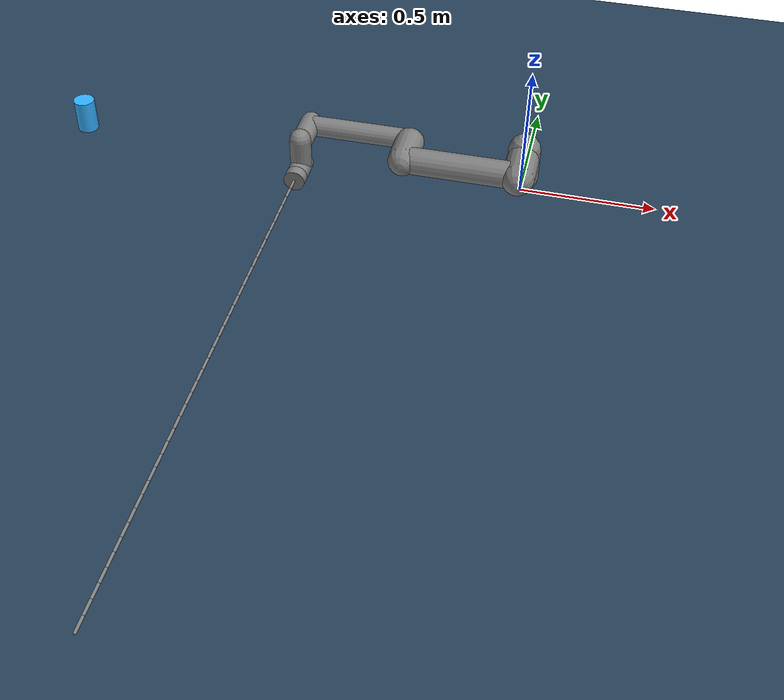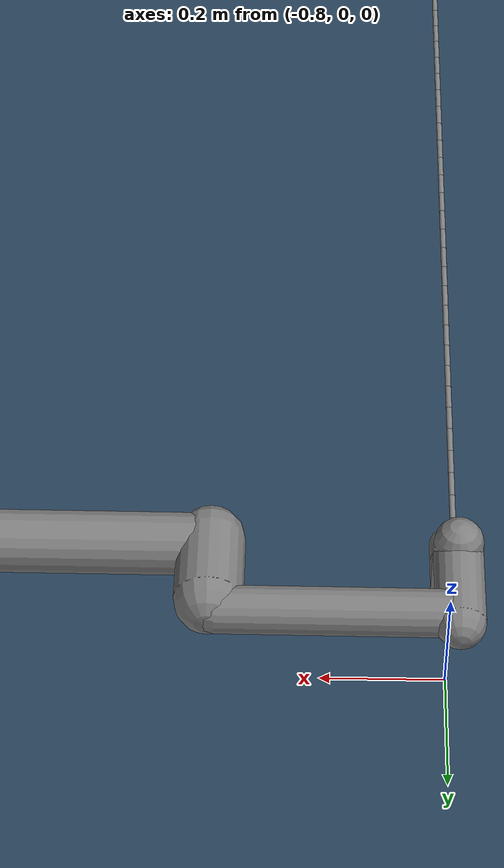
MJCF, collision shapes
<mujoco model="ur5e">
  <compiler angle="radian" meshdir="assets" autolimits="true"/>

  <option integrator="implicitfast"/>
  <option timestep="0.005" gravity="0 0 -9.81" iterations="50"/>

  <visual>
    <map force="0.1" zfar="50"/>
    <rgba haze="0.2 0.3 0.4 1"/>
    <global offwidth="1920" offheight="1080" elevation="-30" azimuth="120"/>
  </visual>

  <statistic center="0 0 1.2" extent="2"/>

  <asset>
    <texture type="skybox" builtin="gradient" rgb1=".4 .6 .8" rgb2="0 0 0" width="32" height="512"/>
    <texture name="grid" type="2d" builtin="checker" width="512" height="512" rgb1=".1 .2 .3" rgb2=".2 .3 .4"/>
    <material name="grid" texture="grid" texrepeat="10 10" texuniform="true" reflectance=".2"/>
  </asset>

  <default>
    <motor ctrlrange="-1 1" ctrllimited="true"/>
    <joint type="hinge" damping="2.0" stiffness="5" armature="0.01" limited="true" solimplimit="0 .99 .01"/>
  </default>

  <default>
    <default class="ur5e">
      <material specular="0.5" shininess="0.25"/>
      <joint axis="0 1 0" range="-6.28319 6.28319" armature="0.1"/>
      <general gaintype="fixed" biastype="affine" ctrlrange="-6.2831 6.2831" gainprm="2000" biasprm="0 -2000 -400"
        forcerange="-150 150"/>
      <default class="size3">
        <default class="size3_limited">
          <joint range="-3.1415 3.1415"/>
          <general ctrlrange="-3.1415 3.1415"/>
        </default>
      </default>
      <default class="size1">
        <general gainprm="500" biasprm="0 -500 -100" forcerange="-28 28"/>
      </default>
      <default class="visual">
        <geom type="mesh" contype="0" conaffinity="0" group="2"/>
      </default>
      <default class="collision">
        <geom type="capsule" group="3"/>
        <default class="eef_collision">
          <geom type="cylinder"/>
        </default>
      </default>
      <site size="0.001" rgba="0.5 0.5 0.5 0.3" group="4"/>
    </default>

    <default class="whip_ball">
      <joint type="ball" damping="0.00" limited="false"/>
    </default>
  </default>

  <asset>
    <material class="ur5e" name="black" rgba="0.033 0.033 0.033 1"/>
    <material class="ur5e" name="jointgray" rgba="0.278 0.278 0.278 1"/>
    <material class="ur5e" name="linkgray" rgba="0.82 0.82 0.82 1"/>
    <material class="ur5e" name="urblue" rgba="0.49 0.678 0.8 1"/>

    <mesh file="base_0.obj"/>
    <mesh file="base_1.obj"/>
    <mesh file="shoulder_0.obj"/>
    <mesh file="shoulder_1.obj"/>
    <mesh file="shoulder_2.obj"/>
    <mesh file="upperarm_0.obj"/>
    <mesh file="upperarm_1.obj"/>
    <mesh file="upperarm_2.obj"/>
    <mesh file="upperarm_3.obj"/>
    <mesh file="forearm_0.obj"/>
    <mesh file="forearm_1.obj"/>
    <mesh file="forearm_2.obj"/>
    <mesh file="forearm_3.obj"/>
    <mesh file="wrist1_0.obj"/>
    <mesh file="wrist1_1.obj"/>
    <mesh file="wrist1_2.obj"/>
    <mesh file="wrist2_0.obj"/>
    <mesh file="wrist2_1.obj"/>
    <mesh file="wrist2_2.obj"/>
    <mesh file="wrist3.obj"/>
  </asset>

  <worldbody>
    <geom name="floor" type="plane" material="grid" size="5 5 .1" condim="3"/>
    <light name="top" pos="0 0 4" mode="trackcom" diffuse="0.8 0.8 0.8"/>
    <camera name="fixed" pos="0 -5 2" xyaxes="1 0 0 0 1 0"/>

      <body name="base" quat="0 0 0 -1" childclass="ur5e">
      <inertial mass="4.0" pos="0 0 0" diaginertia="0.00443333156 0.00443333156 0.0072"/>
      <geom mesh="base_0" material="black" class="visual"/>
      <geom mesh="base_1" material="jointgray" class="visual"/>
        <body name="shoulder_link" pos="0 0 0.163">
        <inertial mass="3.7" pos="0 0 0" diaginertia="0.0102675 0.0102675 0.00666"/>
        <joint name="shoulder_pan_joint" class="size3" axis="0 0 1"/>
        <geom mesh="shoulder_0" material="urblue" class="visual"/>
        <geom mesh="shoulder_1" material="black" class="visual"/>
        <geom mesh="shoulder_2" material="jointgray" class="visual"/>
        <geom class="collision" size="0.06 0.06" pos="0 0 -0.04"/>
          <body name="upper_arm_link" pos="0 0.138 0" quat="1 0 1 0">
          <inertial mass="8.393" pos="0 0 0.2125" diaginertia="0.133886 0.133886 0.0151074"/>
          <joint name="shoulder_lift_joint" class="size3"/>
          <geom mesh="upperarm_0" material="linkgray" class="visual"/>
          <geom mesh="upperarm_1" material="black" class="visual"/>
          <geom mesh="upperarm_2" material="jointgray" class="visual"/>
          <geom mesh="upperarm_3" material="urblue" class="visual"/>
          <geom class="collision" pos="0 -0.04 0" quat="1 1 0 0" size="0.06 0.06"/>
          <geom class="collision" size="0.05 0.2" pos="0 0 0.2"/>
            <body name="forearm_link" pos="0 -0.131 0.425">
            <inertial mass="2.275" pos="0 0 0.196" diaginertia="0.0311796 0.0311796 0.004095"/>
            <joint name="elbow_joint" class="size3_limited"/>
            <geom mesh="forearm_0" material="urblue" class="visual"/>
            <geom mesh="forearm_1" material="linkgray" class="visual"/>
            <geom mesh="forearm_2" material="black" class="visual"/>
            <geom mesh="forearm_3" material="jointgray" class="visual"/>
            <geom class="collision" pos="0 0.08 0" quat="1 1 0 0" size="0.055 0.06"/>
            <geom class="collision" size="0.038 0.19" pos="0 0 0.2"/>
              <body name="wrist_1_link" pos="0 0 0.392" quat="1 0 1 0">
              <inertial mass="1.219" pos="0 0.127 0" diaginertia="0.0025599 0.0025599 0.0021942"/>
              <joint name="wrist_1_joint" class="size1"/>
              <geom mesh="wrist1_0" material="black" class="visual"/>
              <geom mesh="wrist1_1" material="urblue" class="visual"/>
              <geom mesh="wrist1_2" material="jointgray" class="visual"/>
              <geom class="collision" pos="0 0.05 0" quat="1 1 0 0" size="0.04 0.07"/>
                <body name="wrist_2_link" pos="0 0.127 0">
                <inertial mass="1.219" pos="0 0 0.1" diaginertia="0.0025599 0.0025599 0.0021942"/>
                <joint name="wrist_2_joint" axis="0 0 1" class="size1"/>
                <geom mesh="wrist2_0" material="black" class="visual"/>
                <geom mesh="wrist2_1" material="urblue" class="visual"/>
                <geom mesh="wrist2_2" material="jointgray" class="visual"/>
                <geom class="collision" size="0.04 0.06" pos="0 0 0.04"/>
                <geom class="collision" pos="0 0.02 0.1" quat="1 1 0 0" size="0.04 0.04"/>
                  <body name="wrist_3_link" pos="0 0 0.1">
                  <inertial mass="0.1889" pos="0 0.0771683 0" quat="1 0 0 1"
                    diaginertia="0.000132134 9.90863e-05 9.90863e-05"/>
                  <joint name="wrist_3_joint" class="size1"/>
                  <geom material="linkgray" mesh="wrist3" class="visual"/>
                  <geom class="eef_collision" pos="0 0.08 0" quat="1 1 0 0" size="0.04 0.02"/>
                  <site name="attachment_site" pos="0 0.1 0" quat="-1 1 0 0"/>

                    <!-- Start of whip segments -->
                    <body name="whip_seg1" pos="0 0.05 0">
                    <geom type="capsule" fromto="0 0 0 0 0.05 0" size="0.005"/>
                    <joint class="whip_ball"/>
                      <body name="whip_seg2" pos="0 0.05 0">
                      <geom type="capsule" fromto="0 0 0 0 0.05 0" size="0.005"/>
                      <joint class="whip_ball"/>
                        <body name="whip_seg3" pos="0 0.05 0">
                        <geom type="capsule" fromto="0 0 0 0 0.05 0" size="0.005"/>
                        <joint class="whip_ball"/>
                          <body name="whip_seg4" pos="0 0.05 0">
                          <geom type="capsule" fromto="0 0 0 0 0.05 0" size="0.005"/>
                          <joint class="whip_ball"/>
                            <body name="whip_seg5" pos="0 0.05 0">
                            <geom type="capsule" fromto="0 0 0 0 0.05 0" size="0.005"/>
                            <joint class="whip_ball"/>
                              <body name="whip_seg6" pos="0 0.05 0">
                              <geom type="capsule" fromto="0 0 0 0 0.05 0" size="0.005"/>
                              <joint class="whip_ball"/>
                                <body name="whip_seg7" pos="0 0.05 0">
                                <geom type="capsule" fromto="0 0 0 0 0.05 0" size="0.005"/>
                                <joint class="whip_ball"/>
                                  <body name="whip_seg8" pos="0 0.05 0">
                                  <geom type="capsule" fromto="0 0 0 0 0.05 0" size="0.005"/>
                                  <joint class="whip_ball"/>
                                    <body name="whip_seg9" pos="0 0.05 0">
                                    <geom type="capsule" fromto="0 0 0 0 0.05 0" size="0.005"/>
                                    <joint class="whip_ball"/>
                                      <body name="whip_seg10" pos="0 0.05 0">
                                      <geom type="capsule" fromto="0 0 0 0 0.05 0" size="0.005"/>
                                      <joint class="whip_ball"/>
                                        <body name="whip_seg11" pos="0 0.05 0">
                                        <geom type="capsule" fromto="0 0 0 0 0.05 0" size="0.005"/>
                                        <joint class="whip_ball"/>
                                          <body name="whip_seg12" pos="0 0.05 0">
                                          <geom type="capsule" fromto="0 0 0 0 0.05 0" size="0.005"/>
                                          <joint class="whip_ball"/>
                                            <body name="whip_seg13" pos="0 0.05 0">
                                            <geom type="capsule" fromto="0 0 0 0 0.05 0" size="0.005"/>
                                            <joint class="whip_ball"/>
                                              <body name="whip_seg14" pos="0 0.05 0">
                                              <geom type="capsule" fromto="0 0 0 0 0.05 0" size="0.005"/>
                                              <joint class="whip_ball"/>
                                                <body name="whip_seg15" pos="0 0.05 0">
                                                <geom type="capsule" fromto="0 0 0 0 0.05 0" size="0.005"/>
                                                <joint class="whip_ball"/>
                                                  <body name="whip_seg16" pos="0 0.05 0">
                                                  <geom type="capsule" fromto="0 0 0 0 0.05 0" size="0.005"/>
                                                  <joint class="whip_ball"/>
                                                    <body name="whip_seg17" pos="0 0.05 0">
                                                    <geom type="capsule" fromto="0 0 0 0 0.05 0" size="0.005"/>
                                                    <joint class="whip_ball"/>
                                                      <body name="whip_seg18" pos="0 0.05 0">
                                                      <geom type="capsule" fromto="0 0 0 0 0.05 0" size="0.005"/>
                                                      <joint class="whip_ball"/>
                                                        <body name="whip_seg19" pos="0 0.05 0">
                                                        <geom type="capsule" fromto="0 0 0 0 0.05 0" size="0.005"/>
                                                        <joint class="whip_ball"/>
                                                          <body name="whip_seg20" pos="0 0.05 0">
                                                          <geom type="capsule" fromto="0 0 0 0 0.05 0" size="0.005"/>
                                                          <joint class="whip_ball"/>
                                                            <body name="whip_seg21" pos="0 0.05 0">
                                                            <geom type="capsule" fromto="0 0 0 0 0.05 0" size="0.005"/>
                                                            <joint class="whip_ball"/>
                                                              <body name="whip_seg22" pos="0 0.05 0">
                                                              <geom type="capsule" fromto="0 0 0 0 0.05 0" size="0.005"/>
                                                              <joint class="whip_ball"/>
                                                                <body name="whip_seg23" pos="0 0.05 0">
                                                                <geom type="capsule" fromto="0 0 0 0 0.05 0" size="0.005"/>
                                                                <joint class="whip_ball"/>
                                                                  <body name="whip_seg24" pos="0 0.05 0">
                                                                  <geom type="capsule" fromto="0 0 0 0 0.05 0" size="0.005"/>
                                                                  <joint class="whip_ball"/>
                                                                    <body name="whip_seg25" pos="0 0.05 0">
                                                                    <geom type="capsule" fromto="0 0 0 0 0.05 0" size="0.005"/>
                                                                    <joint class="whip_ball"/>
                                                                      <body name="whip_seg26" pos="0 0.05 0">
                                                                      <geom type="capsule" fromto="0 0 0 0 0.05 0" size="0.005"/>
                                                                      <joint class="whip_ball"/>
                                                                        <body name="whip_seg27" pos="0 0.05 0">
                                                                        <geom type="capsule" fromto="0 0 0 0 0.05 0" size="0.005"/>
                                                                        <joint class="whip_ball"/>
                                                                          <body name="whip_seg28" pos="0 0.05 0">
                                                                          <geom type="capsule" fromto="0 0 0 0 0.05 0" size="0.005"/>
                                                                          <joint class="whip_ball"/>
                                                                            <body name="whip_seg29" pos="0 0.05 0">
                                                                            <geom type="capsule" fromto="0 0 0 0 0.05 0" size="0.005"/>
                                                                            <joint class="whip_ball"/>
                                                                              <body name="whip_seg30" pos="0 0.05 0">
                                                                              <geom type="capsule" fromto="0 0 0 0 0.05 0" size="0.005"/>
                                                                              <joint class="whip_ball"/>
                                                                                <body name="whip_seg31" pos="0 0.05 0">
                                                                                <geom type="capsule" fromto="0 0 0 0 0.05 0" size="0.005"/>
                                                                                <joint class="whip_ball"/>
                                                                                  <body name="whip_seg32" pos="0 0.05 0">
                                                                                  <geom type="capsule" fromto="0 0 0 0 0.05 0" size="0.005"/>
                                                                                  <joint class="whip_ball"/>
                                                                                    <body name="whip_seg33" pos="0 0.05 0">
                                                                                    <geom type="capsule" fromto="0 0 0 0 0.05 0" size="0.005"/>
                                                                                    <joint class="whip_ball"/>
                                                                                      <body name="whip_seg34" pos="0 0.05 0">
                                                                                      <geom type="capsule" fromto="0 0 0 0 0.05 0" size="0.005"/>
                                                                                      <joint class="whip_ball"/>
                                                                                        <body name="whip_seg35" pos="0 0.05 0">
                                                                                        <geom type="capsule" fromto="0 0 0 0 0.05 0" size="0.005"/>
                                                                                        <joint class="whip_ball"/>
                                                                                          <body name="whip_seg36" pos="0 0.05 0">
                                                                                          <geom type="capsule" fromto="0 0 0 0 0.05 0" size="0.005"/>
                                                                                          <joint class="whip_ball"/>
                                                                                            <body name="whip_seg37" pos="0 0.05 0">
                                                                                            <geom type="capsule" fromto="0 0 0 0 0.05 0" size="0.005"/>
                                                                                            <joint class="whip_ball"/>
                                                                                              <body name="whip_seg38" pos="0 0.05 0">
                                                                                              <geom type="capsule" fromto="0 0 0 0 0.05 0" size="0.005"/>
                                                                                              <joint class="whip_ball"/>
                                                                                                <body name="whip_seg39" pos="0 0.05 0">
                                                                                                <geom type="capsule" fromto="0 0 0 0 0.05 0" size="0.005"/>
                                                                                                <joint class="whip_ball"/>
                                                                                                  <body name="whip_seg40" pos="0 0.05 0">
                                                                                                  <geom type="capsule" fromto="0 0 0 0 0.05 0" size="0.005"/>
                                                                                                  <joint class="whip_ball"/>
                                                                                                  </body>
                                                                                                </body>
                                                                                              </body>
                                                                                            </body>
                                                                                          </body>
                                                                                        </body>
                                                                                      </body>
                                                                                    </body>
                                                                                  </body>
                                                                                </body>
                                                                              </body>
                                                                            </body>
                                                                          </body>
                                                                        </body>
                                                                      </body>
                                                                    </body>
                                                                  </body>
                                                                </body>
                                                              </body>
                                                            </body>
                                                          </body>
                                                        </body>
                                                      </body>
                                                    </body>
                                                  </body>
                                                </body>
                                              </body>
                                            </body>
                                          </body>
                                        </body>
                                      </body>
                                    </body>
                                  </body>
                                </body>
                              </body>
                            </body>
                          </body>
                        </body>
                      </body>
                    </body>
                    <!-- End of whip segments -->

                  </body>
                </body>
              </body>
            </body>
          </body>
        </body>
      </body>

  <body name="bottle" pos="-1.75 0 0">
    <inertial pos="0 0 0" mass="0.01" diaginertia="0.0001 0.0001 0.0001"/>
    <joint name="bottle_free" type="free"/>
    <geom name="bottle_geom" type="cylinder" size="0.04 0.125" rgba="0.2 0.7 1 1"/>
  </body>

  </worldbody>

  <actuator>
    <general class="size3" name="shoulder_pan" joint="shoulder_pan_joint"/>
    <general class="size3" name="shoulder_lift" joint="shoulder_lift_joint"/>
    <general class="size3_limited" name="elbow" joint="elbow_joint"/>
    <general class="size1" name="wrist_1" joint="wrist_1_joint"/>
    <general class="size1" name="wrist_2" joint="wrist_2_joint"/>
    <general class="size1" name="wrist_3" joint="wrist_3_joint"/>
  </actuator>

</mujoco>
